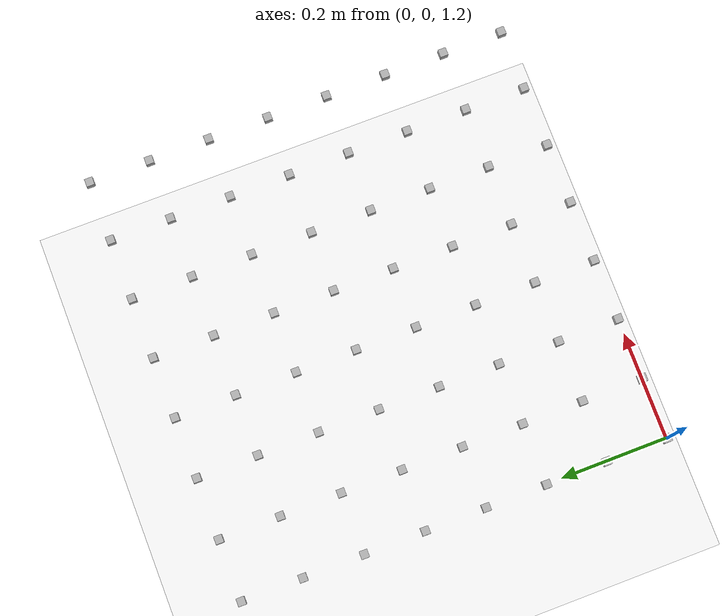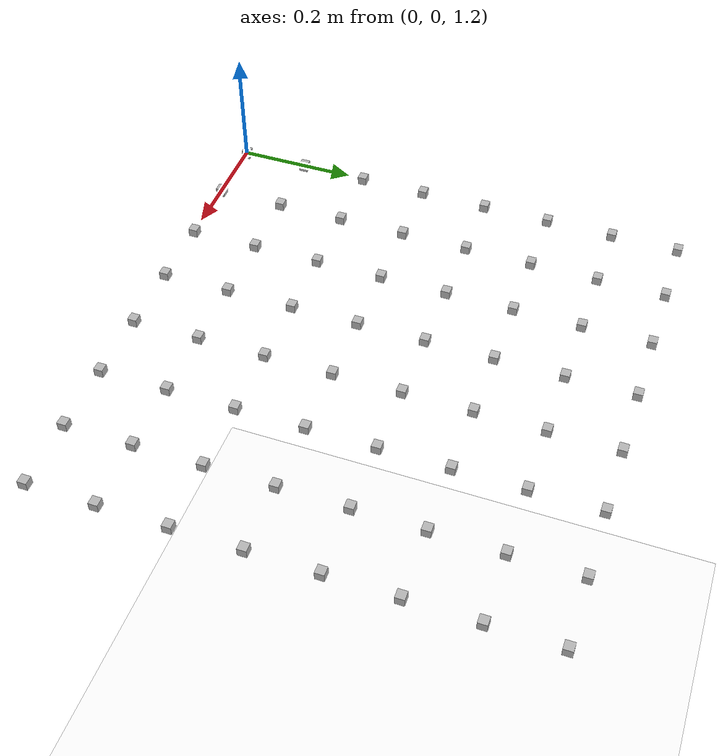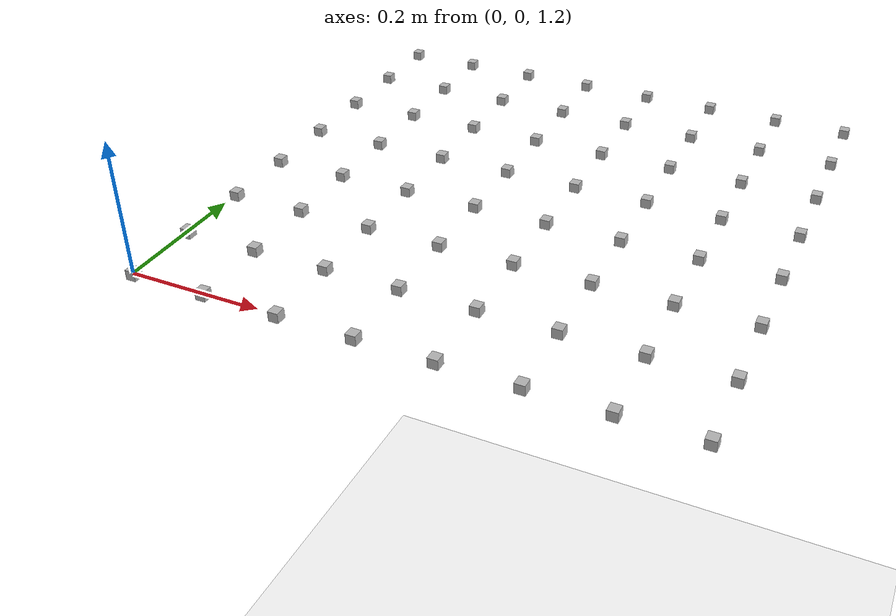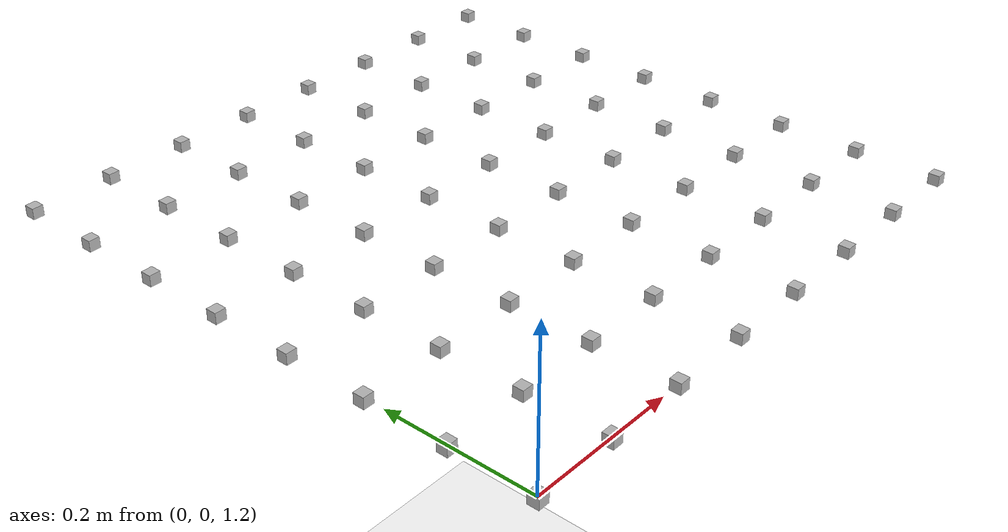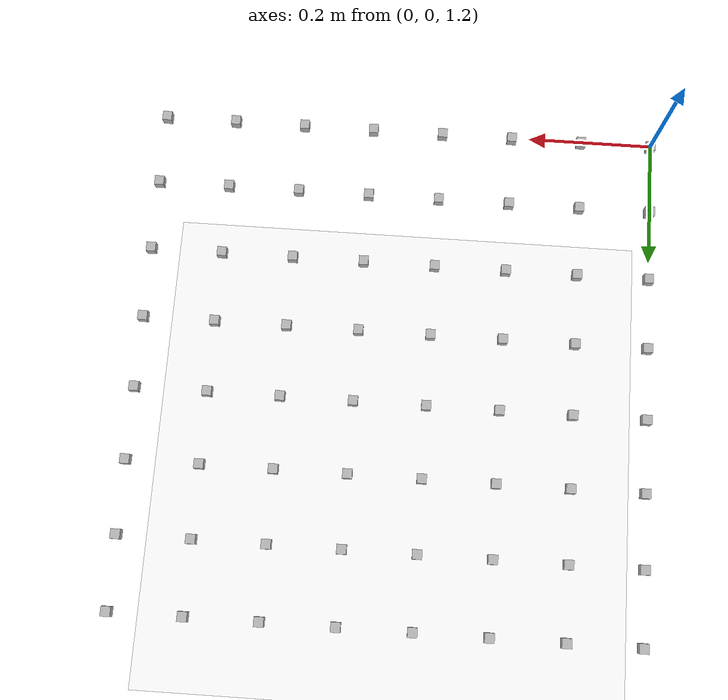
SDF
<!-- /sim/world_with_ground.sdf -->
<sdf version="1.7">
  <world name="default">
    <gravity>0 0 -9.81</gravity>

    <!-- Simple sun -->
    <light name="sun" type="directional">
      <cast_shadows>true</cast_shadows>
      <pose>0 0 10 0 0 0</pose>
      <direction>-0.5 0.5 -1</direction>
      <diffuse>1 1 1 1</diffuse>
      <specular>0.1 0.1 0.1 1</specular>
    </light>

    <!-- Ground plane -->
    <model name="ground">
      <static>true</static>
      <link name="ground_link">
        <collision name="ground_col">
          <geometry>
            <plane><normal>0 0 1</normal><size>200 200</size></plane>
          </geometry>
        </collision>
        <visual name="ground_vis">
          <geometry>
            <plane><normal>0 0 1</normal><size>200 200</size></plane>
          </geometry>
          <material>

                  <ambient>1 1 1 1</ambient>
        <diffuse>1 1 1 1</diffuse>
        <specular>0.1 0.1 0.1 1</specular>
        <emissive>0 0 0 1</emissive>

          </material>
        </visual>
      </link>
    </model>

    <!-- Include YOUR model from the mounted folder -->
    <include>

   <uri>file:///sim/mesh/spring_damper_mesh.sdf</uri>
      <!-- optional: place it -->
      <pose>0 0 0 0 0 0</pose>
    </include>
  </world>
</sdf>
